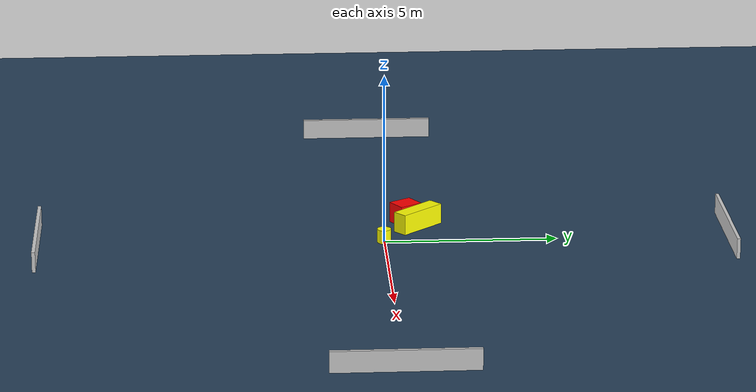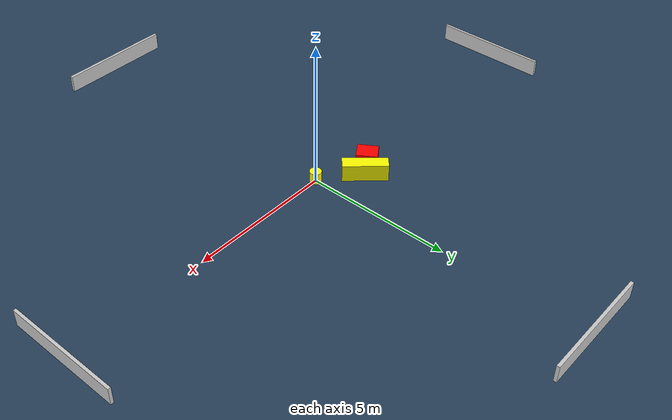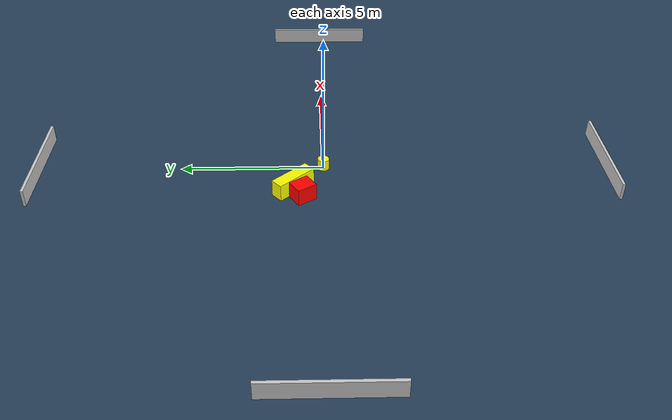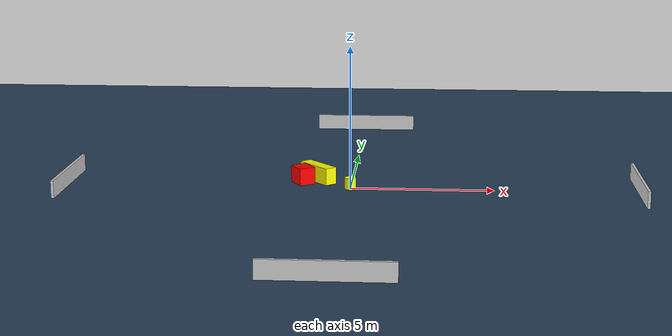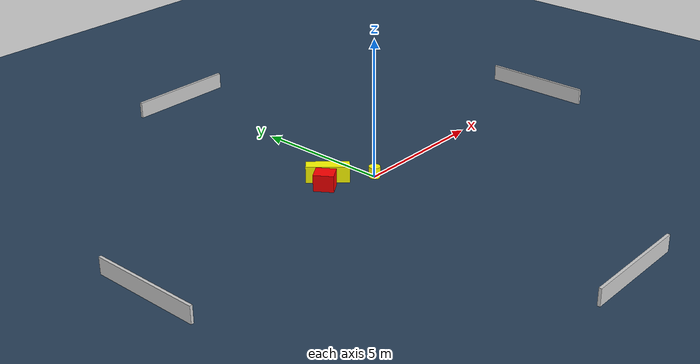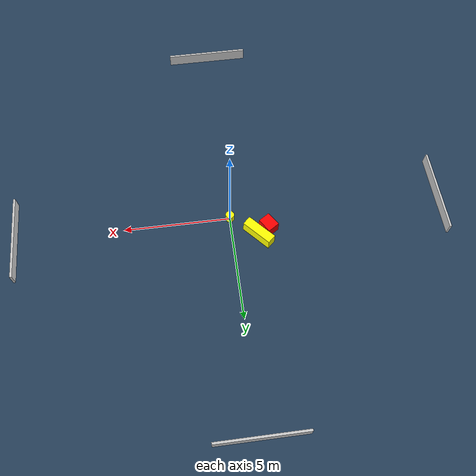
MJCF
<?xml version="1.0" ?>
<mujoco model="generated_environment">
  <option timestep="0.01" integrator="RK4" cone="elliptic"/>
  <default>
    <geom density="1"/>
  </default>
  <asset>
    <texture builtin="gradient" height="3072" name="skybox" rgb1="0.3 0.5 0.7" rgb2="0 0 0" type="skybox" width="512"/>
    <texture builtin="checker" height="300" name="groundplane" rgb1="0.2 0.3 0.4" rgb2="0.1 0.2 0.3" type="2d" width="300"/>
    <material name="groundplane" reflectance="0.2" texrepeat="5 5" texture="groundplane"/>
  </asset>
  <worldbody>
    <light dir="0 0 -1" directional="true" pos="0 0 1.5"/>
    <geom condim="3" friction="0.5 0.005 0.001" material="groundplane" name="floor" pos="0 0 0" size="0 0 0.05" type="plane"/>
    <body name="walls">
      <geom name="wall_1" condim="4" pos="-10.0 0.0 0.3" rgba="0.800000011920929 0.800000011920929 0.800000011920929 1.0" size="0.05 2.0 0.3" type="box"/>
      <geom name="wall_2" condim="4" pos="10.0 0.0 0.3" rgba="0.800000011920929 0.800000011920929 0.800000011920929 1.0" size="0.05 2.0 0.3" type="box"/>
      <geom name="wall_3" condim="4" pos="0.0 -10.0 0.3" rgba="0.800000011920929 0.800000011920929 0.800000011920929 1.0" size="2.0 0.05 0.3" type="box"/>
      <geom name="wall_4" condim="4" pos="0.0 10.0 0.3" rgba="0.800000011920929 0.800000011920929 0.800000011920929 1.0" size="2.0 0.05 0.3" type="box"/>
    </body>
    <body name="robot">
      <joint name="joint_x" type="slide" pos="0 0 0" axis="1 0 0"/>
      <joint name="joint_y" type="slide" pos="0 0 0" axis="0 1 0"/>
      <geom name="robot" type="cylinder" pos="0.0 0.0 0.2" size="0.2 0.2 0.0" mass="5.0" friction="1.0 0.005 0.0001" condim="4" rgba="1.0 1.0 0.0 1.0"/>
    </body>
    <body name="obstacle_1_movable">
      <geom name="obstacle_1_movable" condim="4" pos="-1.2189477349498918 1.0526347964493892 0.3" euler="0 0 42.0915177096956" friction="0.0 0.005 0.001" rgba="1.0 1.0 0.0 1.0" size="0.22381915424652707 0.7529969104564744 0.3" type="box" mass="0.1"/>
      <joint type="free"/>
    </body>
    <body name="obstacle_2_static">
      <geom name="obstacle_2_static" condim="4" pos="-1.7243611393857758 0.7242742351539483 0.3" euler="0 0 212.874094140676" friction="0.0 0.005 0.001" rgba="1.0 0.0 0.0 1.0" size="0.2957404481162783 0.35413546184169253 0.3" type="box"/>
    </body>
  </worldbody>
  <actuator>
    <motor name="actuator_x" joint="joint_x" gear="1" ctrlrange="-1 1"/>
    <motor name="actuator_y" joint="joint_y" gear="1" ctrlrange="-1 1"/>
  </actuator>
</mujoco>
